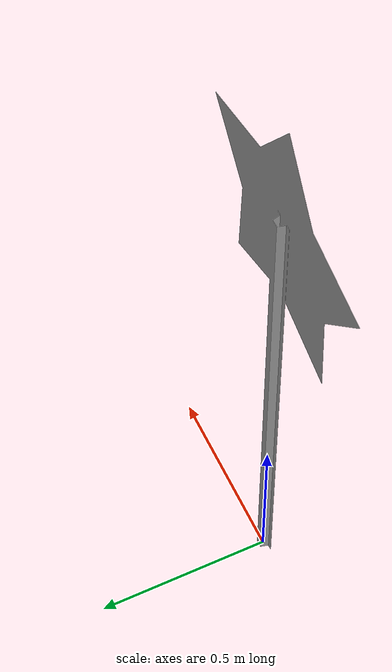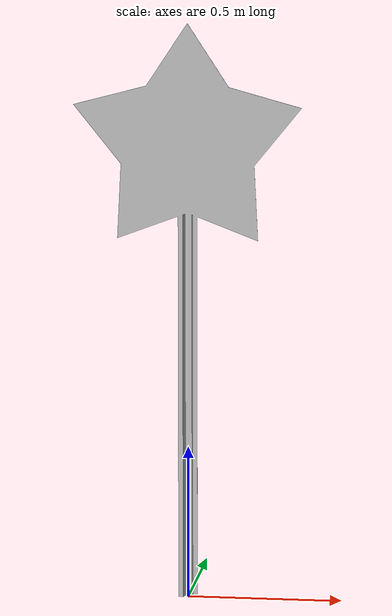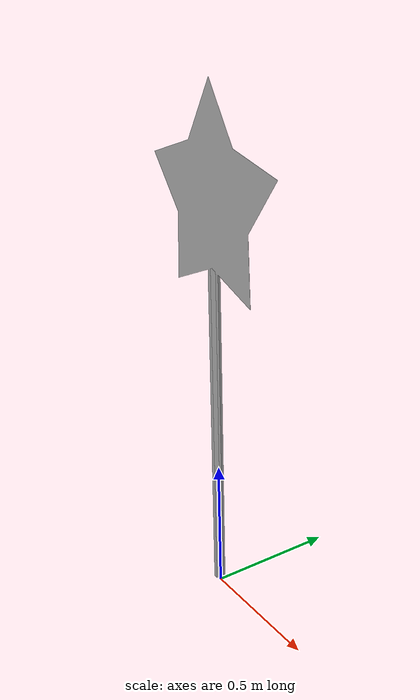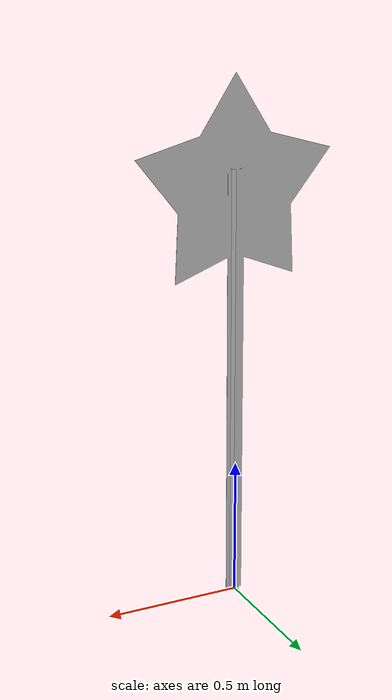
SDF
<?xml version="1.0" ?>
<sdf version="1.5">
  <model name="gold_sign">
    <static>true</static>
    <link name="link">
      <collision name="collision">
        <geometry>
          <mesh>
            <uri>model://gold_sign/meshes/gold_sign.dae</uri>
          </mesh>
        </geometry>
      </collision>
      <visual name="visual">
        <geometry>
          <mesh>
            <uri>model://gold_sign/meshes/gold_sign.dae</uri>
          </mesh>
        </geometry>
        <material>
          <script>
            <uri>model://gold_sign/materials/scripts</uri>
            <uri>model://gold_sign/materials/textures</uri>
            <name>GoldSign/Diffuse</name>
          </script>
        </material>
      </visual>
    </link>
  </model>
</sdf>
